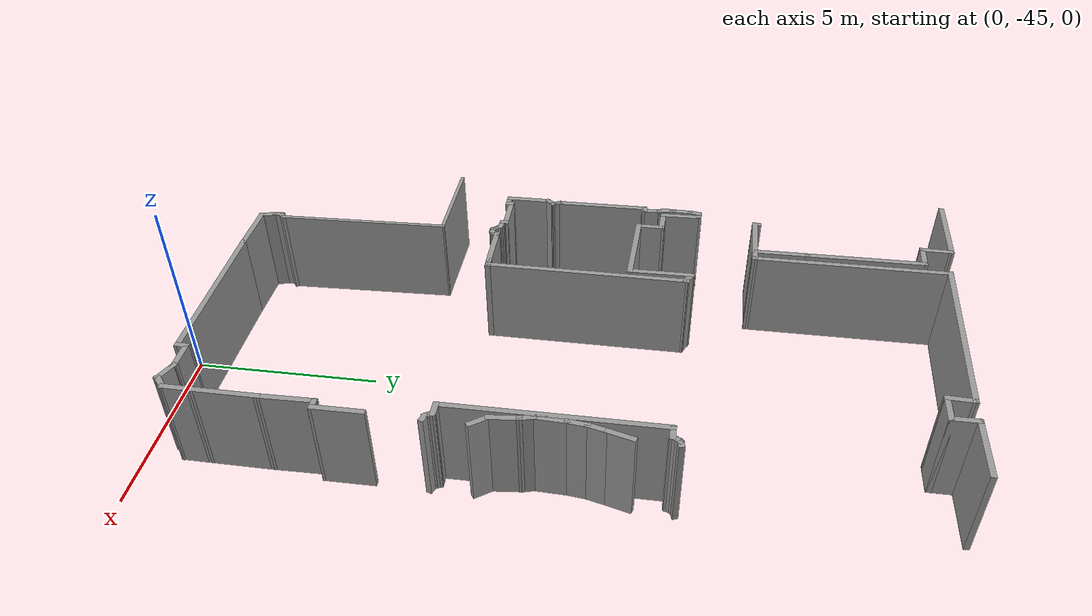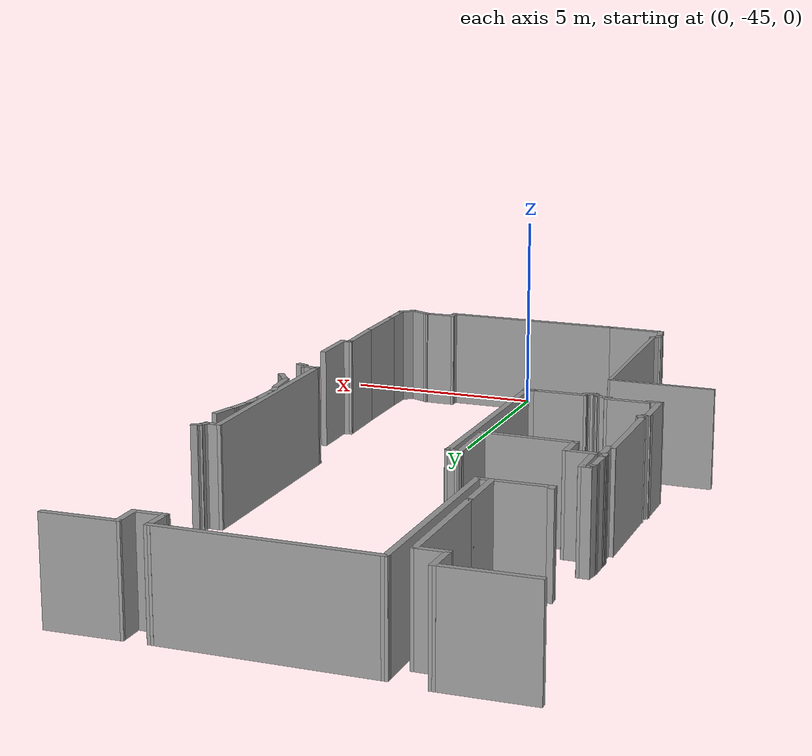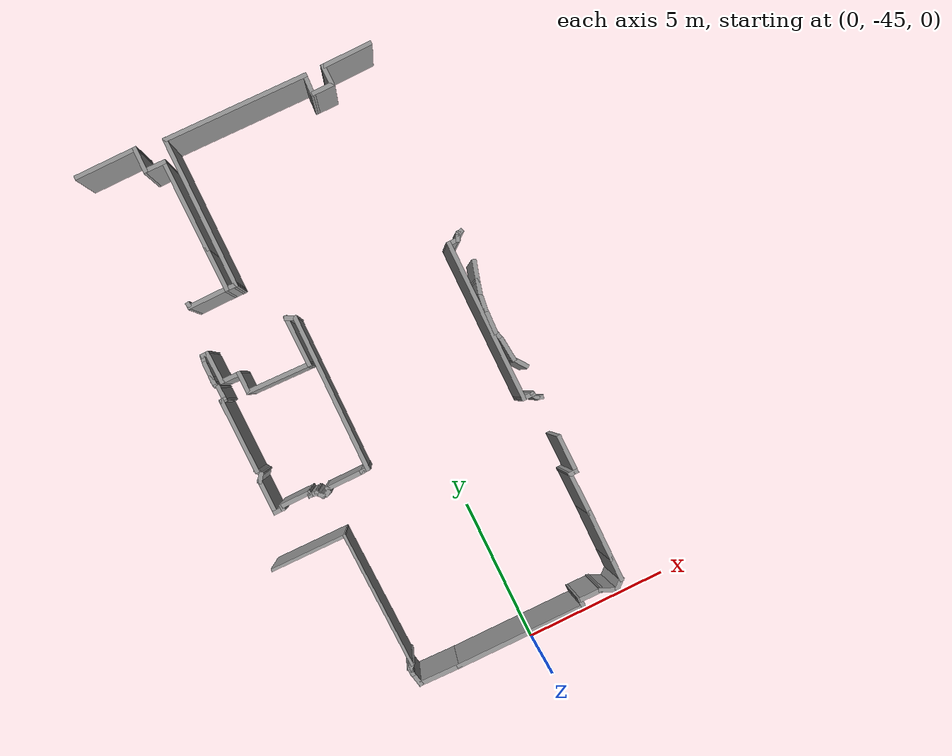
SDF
<sdf version="1.6">
 <model name="3_north">
  <pose>-14.229 -33.4428 0 0 -0 0</pose>
  <link name="Wall_160">
   <collision name="Wall_160_Collision">
    <geometry><box><size>1.37004 0.15 2.5</size></box></geometry>
    <pose>0 0 1.25 0 -0 0</pose>
   </collision>
   <visual name="Wall_160_Visual">
    <pose>0 0 1.25 0 -0 0</pose>
    <geometry><box><size>1.37004 0.15 2.5</size></box></geometry>
    <material>
     <script><uri>file://media/materials/scripts/gazebo.material</uri><name>Gazebo/Grey</name></script>
     <ambient>1 1 1 1</ambient>
    </material>
   </visual>
   <pose>17.8249 -6.19533 0 0 0 -1.5708</pose>
  </link>
  <link name="Wall_162">
   <collision name="Wall_162_Collision">
    <geometry><box><size>0.356643 0.15 2.5</size></box></geometry>
    <pose>0 0 1.25 0 -0 0</pose>
   </collision>
   <visual name="Wall_162_Visual">
    <pose>0 0 1.25 0 -0 0</pose>
    <geometry><box><size>0.356643 0.15 2.5</size></box></geometry>
    <material>
     <script><uri>file://media/materials/scripts/gazebo.material</uri><name>Gazebo/Grey</name></script>
     <ambient>1 1 1 1</ambient>
    </material>
   </visual>
   <pose>17.7216 -6.80767 0 0 0 -3.11889</pose>
  </link>
  <link name="Wall_163">
   <collision name="Wall_163_Collision">
    <geometry><box><size>1.5375 0.15 2.5</size></box></geometry>
    <pose>0 0 1.25 0 -0 0</pose>
   </collision>
   <visual name="Wall_163_Visual">
    <pose>0 0 1.25 0 -0 0</pose>
    <geometry><box><size>1.5375 0.15 2.5</size></box></geometry>
    <material>
     <script><uri>file://media/materials/scripts/gazebo.material</uri><name>Gazebo/Grey</name></script>
     <ambient>1 1 1 1</ambient>
    </material>
   </visual>
   <pose>17.6282 -7.5037 0 0 0 -1.55658</pose>
  </link>
  <link name="Wall_165">
   <collision name="Wall_165_Collision">
    <geometry><box><size>1.79463 0.15 2.5</size></box></geometry>
    <pose>0 0 1.25 0 -0 0</pose>
   </collision>
   <visual name="Wall_165_Visual">
    <pose>0 0 1.25 0 -0 0</pose>
    <geometry><box><size>1.79463 0.15 2.5</size></box></geometry>
    <material>
     <script><uri>file://media/materials/scripts/gazebo.material</uri><name>Gazebo/Grey</name></script>
     <ambient>1 1 1 1</ambient>
    </material>
   </visual>
   <pose>17.6312 -9.01966 0 0 0 -1.57907</pose>
  </link>
  <link name="Wall_166">
   <collision name="Wall_166_Collision">
    <geometry><box><size>0.870069 0.15 2.5</size></box></geometry>
    <pose>0 0 1.25 0 -0 0</pose>
   </collision>
   <visual name="Wall_166_Visual">
    <pose>0 0 1.25 0 -0 0</pose>
    <geometry><box><size>0.870069 0.15 2.5</size></box></geometry>
    <material>
     <script><uri>file://media/materials/scripts/gazebo.material</uri><name>Gazebo/Grey</name></script>
     <ambient>1 1 1 1</ambient>
    </material>
   </visual>
   <pose>17.6194 -10.202 0 0 0 -1.58468</pose>
  </link>
  <link name="Wall_167">
   <collision name="Wall_167_Collision">
    <geometry><box><size>0.518782 0.15 2.5</size></box></geometry>
    <pose>0 0 1.25 0 -0 0</pose>
   </collision>
   <visual name="Wall_167_Visual">
    <pose>0 0 1.25 0 -0 0</pose>
    <geometry><box><size>0.518782 0.15 2.5</size></box></geometry>
    <material>
     <script><uri>file://media/materials/scripts/gazebo.material</uri><name>Gazebo/Grey</name></script>
     <ambient>1 1 1 1</ambient>
    </material>
   </visual>
   <pose>17.4744 -10.682 0 0 0 -2.43297</pose>
  </link>
  <link name="Wall_168">
   <collision name="Wall_168_Collision">
    <geometry><box><size>0.664782 0.15 2.5</size></box></geometry>
    <pose>0 0 1.25 0 -0 0</pose>
   </collision>
   <visual name="Wall_168_Visual">
    <pose>0 0 1.25 0 -0 0</pose>
    <geometry><box><size>0.664782 0.15 2.5</size></box></geometry>
    <material>
     <script><uri>file://media/materials/scripts/gazebo.material</uri><name>Gazebo/Grey</name></script>
     <ambient>1 1 1 1</ambient>
    </material>
   </visual>
   <pose>17.0994 -10.6969 0 0 -0 2.7214</pose>
  </link>
  <link name="Wall_169">
   <collision name="Wall_169_Collision">
    <geometry><box><size>0.880068 0.15 2.5</size></box></geometry>
    <pose>0 0 1.25 0 -0 0</pose>
   </collision>
   <visual name="Wall_169_Visual">
    <pose>0 0 1.25 0 -0 0</pose>
    <geometry><box><size>0.880068 0.15 2.5</size></box></geometry>
    <material>
     <script><uri>file://media/materials/scripts/gazebo.material</uri><name>Gazebo/Grey</name></script>
     <ambient>1 1 1 1</ambient>
    </material>
   </visual>
   <pose>16.4994 -10.5869 0 0 -0 3.1279</pose>
  </link>
  <link name="Wall_170">
   <collision name="Wall_170_Collision">
    <geometry><box><size>0.380217 0.15 2.5</size></box></geometry>
    <pose>0 0 1.25 0 -0 0</pose>
   </collision>
   <visual name="Wall_170_Visual">
    <pose>0 0 1.25 0 -0 0</pose>
    <geometry><box><size>0.380217 0.15 2.5</size></box></geometry>
    <material>
     <script><uri>file://media/materials/scripts/gazebo.material</uri><name>Gazebo/Grey</name></script>
     <ambient>1 1 1 1</ambient>
    </material>
   </visual>
   <pose>16.1294 -10.6969 0 0 0 -1.61425</pose>
  </link>
  <link name="Wall_171">
   <collision name="Wall_171_Collision">
    <geometry><box><size>4.5901 0.15 2.5</size></box></geometry>
    <pose>0 0 1.25 0 -0 0</pose>
   </collision>
   <visual name="Wall_171_Visual">
    <pose>0 0 1.25 0 -0 0</pose>
    <geometry><box><size>4.5901 0.15 2.5</size></box></geometry>
    <material>
     <script><uri>file://media/materials/scripts/gazebo.material</uri><name>Gazebo/Grey</name></script>
     <ambient>1 1 1 1</ambient>
    </material>
   </visual>
   <pose>13.9044 -10.797 0 0 -0 3.13484</pose>
  </link>
  <link name="Wall_173">
   <collision name="Wall_173_Collision">
    <geometry><box><size>1.52058 0.15 2.5</size></box></geometry>
    <pose>0 0 1.25 0 -0 0</pose>
   </collision>
   <visual name="Wall_173_Visual">
    <pose>0 0 1.25 0 -0 0</pose>
    <geometry><box><size>1.52058 0.15 2.5</size></box></geometry>
    <material>
     <script><uri>file://media/materials/scripts/gazebo.material</uri><name>Gazebo/Grey</name></script>
     <ambient>1 1 1 1</ambient>
    </material>
   </visual>
   <pose>10.9994 -10.762 0 0 -0 3.1124</pose>
  </link>
  <link name="Wall_174">
   <collision name="Wall_174_Collision">
    <geometry><box><size>0.55025 0.15 2.5</size></box></geometry>
    <pose>0 0 1.25 0 -0 0</pose>
   </collision>
   <visual name="Wall_174_Visual">
    <pose>0 0 1.25 0 -0 0</pose>
    <geometry><box><size>0.55025 0.15 2.5</size></box></geometry>
    <material>
     <script><uri>file://media/materials/scripts/gazebo.material</uri><name>Gazebo/Grey</name></script>
     <ambient>1 1 1 1</ambient>
    </material>
   </visual>
   <pose>10.2694 -10.547 0 0 -0 1.7976</pose>
  </link>
  <link name="Wall_175">
   <collision name="Wall_175_Collision">
    <geometry><box><size>0.330278 0.15 2.5</size></box></geometry>
    <pose>0 0 1.25 0 -0 0</pose>
   </collision>
   <visual name="Wall_175_Visual">
    <pose>0 0 1.25 0 -0 0</pose>
    <geometry><box><size>0.330278 0.15 2.5</size></box></geometry>
    <material>
     <script><uri>file://media/materials/scripts/gazebo.material</uri><name>Gazebo/Grey</name></script>
     <ambient>1 1 1 1</ambient>
    </material>
   </visual>
   <pose>10.2194 -10.262 0 0 -0 1.6263</pose>
  </link>
  <link name="Wall_176">
   <collision name="Wall_176_Collision">
    <geometry><box><size>0.30589 0.15 2.5</size></box></geometry>
    <pose>0 0 1.25 0 -0 0</pose>
   </collision>
   <visual name="Wall_176_Visual">
    <pose>0 0 1.25 0 -0 0</pose>
    <geometry><box><size>0.30589 0.15 2.5</size></box></geometry>
    <material>
     <script><uri>file://media/materials/scripts/gazebo.material</uri><name>Gazebo/Grey</name></script>
     <ambient>1 1 1 1</ambient>
    </material>
   </visual>
   <pose>10.2742 -10.122 0 0 -0 0.696084</pose>
  </link>
  <link name="Wall_177">
   <collision name="Wall_177_Collision">
    <geometry><box><size>4.77244 0.1 2.5</size></box></geometry>
    <pose>0 0 1.25 0 -0 0</pose>
   </collision>
   <visual name="Wall_177_Visual">
    <pose>0 0 1.25 0 -0 0</pose>
    <geometry><box><size>4.77244 0.1 2.5</size></box></geometry>
    <material>
     <script><uri>file://media/materials/scripts/gazebo.material</uri><name>Gazebo/Grey</name></script>
     <ambient>1 1 1 1</ambient>
    </material>
   </visual>
   <pose>10.259 -7.73699 0 0 -0 1.60291</pose>
  </link>
  <link name="Wall_180">
   <collision name="Wall_180_Collision">
    <geometry><box><size>2.6598 0.1 2.5</size></box></geometry>
    <pose>0 0 1.25 0 -0 0</pose>
   </collision>
   <visual name="Wall_180_Visual">
    <pose>0 0 1.25 0 -0 0</pose>
    <geometry><box><size>2.6598 0.1 2.5</size></box></geometry>
    <material>
     <script><uri>file://media/materials/scripts/gazebo.material</uri><name>Gazebo/Grey</name></script>
     <ambient>1 1 1 1</ambient>
    </material>
   </visual>
   <pose>8.90404 -5.38699 0 0 -0 3.12987</pose>
  </link>
  <link name="Wall_393">
   <collision name="Wall_393_Collision">
    <geometry><box><size>5.71619 0.15 2.5</size></box></geometry>
    <pose>0 0 1.25 0 -0 0</pose>
   </collision>
   <visual name="Wall_393_Visual">
    <pose>0 0 1.25 0 -0 0</pose>
    <geometry><box><size>5.71619 0.15 2.5</size></box></geometry>
    <material>
     <script><uri>file://media/materials/scripts/gazebo.material</uri><name>Gazebo/Grey</name></script>
     <ambient>1 1 1 1</ambient>
    </material>
   </visual>
   <pose>17.3571 -1.16356 0 0 -0 1.56666</pose>
  </link>
  <link name="Wall_394">
   <collision name="Wall_394_Collision">
    <geometry><box><size>0.4605 0.15 2.5</size></box></geometry>
    <pose>0 0 1.25 0 -0 0</pose>
   </collision>
   <visual name="Wall_394_Visual">
    <pose>0 0 1.25 0 -0 0</pose>
    <geometry><box><size>0.4605 0.15 2.5</size></box></geometry>
    <material>
     <script><uri>file://media/materials/scripts/gazebo.material</uri><name>Gazebo/Grey</name></script>
     <ambient>1 1 1 1</ambient>
    </material>
   </visual>
   <pose>17.5239 1.61943 0 0 -0 0</pose>
  </link>
  <link name="Wall_395">
   <collision name="Wall_395_Collision">
    <geometry><box><size>0.252859 0.15 2.5</size></box></geometry>
    <pose>0 0 1.25 0 -0 0</pose>
   </collision>
   <visual name="Wall_395_Visual">
    <pose>0 0 1.25 0 -0 0</pose>
    <geometry><box><size>0.252859 0.15 2.5</size></box></geometry>
    <material>
     <script><uri>file://media/materials/scripts/gazebo.material</uri><name>Gazebo/Grey</name></script>
     <ambient>1 1 1 1</ambient>
    </material>
   </visual>
   <pose>17.7021 1.66543 0 0 -0 1.10715</pose>
  </link>
  <link name="Wall_396">
   <collision name="Wall_396_Collision">
    <geometry><box><size>0.248927 0.15 2.5</size></box></geometry>
    <pose>0 0 1.25 0 -0 0</pose>
   </collision>
   <visual name="Wall_396_Visual">
    <pose>0 0 1.25 0 -0 0</pose>
    <geometry><box><size>0.248927 0.15 2.5</size></box></geometry>
    <material>
     <script><uri>file://media/materials/scripts/gazebo.material</uri><name>Gazebo/Grey</name></script>
     <ambient>1 1 1 1</ambient>
    </material>
   </visual>
   <pose>17.7539 1.75168 0 0 -0 0.950547</pose>
  </link>
  <link name="Wall_397">
   <collision name="Wall_397_Collision">
    <geometry><box><size>0.270064 0.15 2.5</size></box></geometry>
    <pose>0 0 1.25 0 -0 0</pose>
   </collision>
   <visual name="Wall_397_Visual">
    <pose>0 0 1.25 0 -0 0</pose>
    <geometry><box><size>0.270064 0.15 2.5</size></box></geometry>
    <material>
     <script><uri>file://media/materials/scripts/gazebo.material</uri><name>Gazebo/Grey</name></script>
     <ambient>1 1 1 1</ambient>
    </material>
   </visual>
   <pose>17.8401 1.80919 0 0 -0 0.291457</pose>
  </link>
  <link name="Wall_407">
   <collision name="Wall_407_Collision">
    <geometry><box><size>0.772383 0.15 2.5</size></box></geometry>
    <pose>0 0 1.25 0 -0 0</pose>
   </collision>
   <visual name="Wall_407_Visual">
    <pose>0 0 1.25 0 -0 0</pose>
    <geometry><box><size>0.772383 0.15 2.5</size></box></geometry>
    <material>
     <script><uri>file://media/materials/scripts/gazebo.material</uri><name>Gazebo/Grey</name></script>
     <ambient>1 1 1 1</ambient>
    </material>
   </visual>
   <pose>17.7654 0.446435 0 0 0 -1.85163</pose>
  </link>
  <link name="Wall_408">
   <collision name="Wall_408_Collision">
    <geometry><box><size>0.649291 0.15 2.5</size></box></geometry>
    <pose>0 0 1.25 0 -0 0</pose>
   </collision>
   <visual name="Wall_408_Visual">
    <pose>0 0 1.25 0 -0 0</pose>
    <geometry><box><size>0.649291 0.15 2.5</size></box></geometry>
    <material>
     <script><uri>file://media/materials/scripts/gazebo.material</uri><name>Gazebo/Grey</name></script>
     <ambient>1 1 1 1</ambient>
    </material>
   </visual>
   <pose>17.6159 -0.094065 0 0 0 -1.82695</pose>
  </link>
  <link name="Wall_409">
   <collision name="Wall_409_Collision">
    <geometry><box><size>0.636411 0.15 2.5</size></box></geometry>
    <pose>0 0 1.25 0 -0 0</pose>
   </collision>
   <visual name="Wall_409_Visual">
    <pose>0 0 1.25 0 -0 0</pose>
    <geometry><box><size>0.636411 0.15 2.5</size></box></geometry>
    <material>
     <script><uri>file://media/materials/scripts/gazebo.material</uri><name>Gazebo/Grey</name></script>
     <ambient>1 1 1 1</ambient>
    </material>
   </visual>
   <pose>17.5239 -0.577065 0 0 0 -1.68929</pose>
  </link>
  <link name="Wall_410">
   <collision name="Wall_410_Collision">
    <geometry><box><size>0.94425 0.15 2.5</size></box></geometry>
    <pose>0 0 1.25 0 -0 0</pose>
   </collision>
   <visual name="Wall_410_Visual">
    <pose>0 0 1.25 0 -0 0</pose>
    <geometry><box><size>0.94425 0.15 2.5</size></box></geometry>
    <material>
     <script><uri>file://media/materials/scripts/gazebo.material</uri><name>Gazebo/Grey</name></script>
     <ambient>1 1 1 1</ambient>
    </material>
   </visual>
   <pose>17.4779 -1.21531 0 0 0 -1.61425</pose>
  </link>
  <link name="Wall_411">
   <collision name="Wall_411_Collision">
    <geometry><box><size>0.48191 0.15 2.5</size></box></geometry>
    <pose>0 0 1.25 0 -0 0</pose>
   </collision>
   <visual name="Wall_411_Visual">
    <pose>0 0 1.25 0 -0 0</pose>
    <geometry><box><size>0.48191 0.15 2.5</size></box></geometry>
    <material>
     <script><uri>file://media/materials/scripts/gazebo.material</uri><name>Gazebo/Grey</name></script>
     <ambient>1 1 1 1</ambient>
    </material>
   </visual>
   <pose>17.5009 -1.77306 0 0 0 -1.32582</pose>
  </link>
  <link name="Wall_412">
   <collision name="Wall_412_Collision">
    <geometry><box><size>0.877778 0.15 2.5</size></box></geometry>
    <pose>0 0 1.25 0 -0 0</pose>
   </collision>
   <visual name="Wall_412_Visual">
    <pose>0 0 1.25 0 -0 0</pose>
    <geometry><box><size>0.877778 0.15 2.5</size></box></geometry>
    <material>
     <script><uri>file://media/materials/scripts/gazebo.material</uri><name>Gazebo/Grey</name></script>
     <ambient>1 1 1 1</ambient>
    </material>
   </visual>
   <pose>17.5756 -2.29631 0 0 0 -1.47585</pose>
  </link>
  <link name="Wall_413">
   <collision name="Wall_413_Collision">
    <geometry><box><size>0.619251 0.15 2.5</size></box></geometry>
    <pose>0 0 1.25 0 -0 0</pose>
   </collision>
   <visual name="Wall_413_Visual">
    <pose>0 0 1.25 0 -0 0</pose>
    <geometry><box><size>0.619251 0.15 2.5</size></box></geometry>
    <material>
     <script><uri>file://media/materials/scripts/gazebo.material</uri><name>Gazebo/Grey</name></script>
     <ambient>1 1 1 1</ambient>
    </material>
   </visual>
   <pose>17.7481 -2.84831 0 0 0 -0.942</pose>
  </link>
  <link name="Wall_419">
   <collision name="Wall_419_Collision">
    <geometry><box><size>0.472 0.15 2.5</size></box></geometry>
    <pose>0 0 1.25 0 -0 0</pose>
   </collision>
   <visual name="Wall_419_Visual">
    <pose>0 0 1.25 0 -0 0</pose>
    <geometry><box><size>0.472 0.15 2.5</size></box></geometry>
    <material>
     <script><uri>file://media/materials/scripts/gazebo.material</uri><name>Gazebo/Grey</name></script>
     <ambient>1 1 1 1</ambient>
    </material>
   </visual>
   <pose>17.5066 -3.94657 0 0 -0 0</pose>
  </link>
  <link name="Wall_420">
   <collision name="Wall_420_Collision">
    <geometry><box><size>0.248256 0.15 2.5</size></box></geometry>
    <pose>0 0 1.25 0 -0 0</pose>
   </collision>
   <visual name="Wall_420_Visual">
    <pose>0 0 1.25 0 -0 0</pose>
    <geometry><box><size>0.248256 0.15 2.5</size></box></geometry>
    <material>
     <script><uri>file://media/materials/scripts/gazebo.material</uri><name>Gazebo/Grey</name></script>
     <ambient>1 1 1 1</ambient>
    </material>
   </visual>
   <pose>17.6849 -3.99256 0 0 0 -1.21203</pose>
  </link>
  <link name="Wall_421">
   <collision name="Wall_421_Collision">
    <geometry><box><size>0.232928 0.15 2.5</size></box></geometry>
    <pose>0 0 1.25 0 -0 0</pose>
   </collision>
   <visual name="Wall_421_Visual">
    <pose>0 0 1.25 0 -0 0</pose>
    <geometry><box><size>0.232928 0.15 2.5</size></box></geometry>
    <material>
     <script><uri>file://media/materials/scripts/gazebo.material</uri><name>Gazebo/Grey</name></script>
     <ambient>1 1 1 1</ambient>
    </material>
   </visual>
   <pose>17.7251 -4.07306 0 0 0 -0.982794</pose>
  </link>
  <link name="Wall_422">
   <collision name="Wall_422_Collision">
    <geometry><box><size>0.284604 0.15 2.5</size></box></geometry>
    <pose>0 0 1.25 0 -0 0</pose>
   </collision>
   <visual name="Wall_422_Visual">
    <pose>0 0 1.25 0 -0 0</pose>
    <geometry><box><size>0.284604 0.15 2.5</size></box></geometry>
    <material>
     <script><uri>file://media/materials/scripts/gazebo.material</uri><name>Gazebo/Grey</name></script>
     <ambient>1 1 1 1</ambient>
    </material>
   </visual>
   <pose>17.8114 -4.13056 0 0 0 -0.348771</pose>
  </link>
  <link name="Wall_427">
   <collision name="Wall_427_Collision">
    <geometry><box><size>1.82303 0.15 2.5</size></box></geometry>
    <pose>0 0 1.25 0 -0 0</pose>
   </collision>
   <visual name="Wall_427_Visual">
    <pose>0 0 1.25 0 -0 0</pose>
    <geometry><box><size>1.82303 0.15 2.5</size></box></geometry>
    <material>
     <script><uri>file://media/materials/scripts/gazebo.material</uri><name>Gazebo/Grey</name></script>
     <ambient>1 1 1 1</ambient>
    </material>
   </visual>
   <pose>11.5634 0.930467 0 0 0 -1.56171</pose>
  </link>
  <link name="Wall_428">
   <collision name="Wall_428_Collision">
    <geometry><box><size>2.30986 0.15 2.5</size></box></geometry>
    <pose>0 0 1.25 0 -0 0</pose>
   </collision>
   <visual name="Wall_428_Visual">
    <pose>0 0 1.25 0 -0 0</pose>
    <geometry><box><size>2.30986 0.15 2.5</size></box></geometry>
    <material>
     <script><uri>file://media/materials/scripts/gazebo.material</uri><name>Gazebo/Grey</name></script>
     <ambient>1 1 1 1</ambient>
    </material>
   </visual>
   <pose>10.4912 0.124403 0 0 -0 3.11343</pose>
  </link>
  <link name="Wall_429">
   <collision name="Wall_429_Collision">
    <geometry><box><size>0.803976 0.15 2.5</size></box></geometry>
    <pose>0 0 1.25 0 -0 0</pose>
   </collision>
   <visual name="Wall_429_Visual">
    <pose>0 0 1.25 0 -0 0</pose>
    <geometry><box><size>0.803976 0.15 2.5</size></box></geometry>
    <material>
     <script><uri>file://media/materials/scripts/gazebo.material</uri><name>Gazebo/Grey</name></script>
     <ambient>1 1 1 1</ambient>
    </material>
   </visual>
   <pose>9.41134 0.481809 0 0 -0 1.5708</pose>
  </link>
  <link name="Wall_430">
   <collision name="Wall_430_Collision">
    <geometry><box><size>0.773744 0.15 2.5</size></box></geometry>
    <pose>0 0 1.25 0 -0 0</pose>
   </collision>
   <visual name="Wall_430_Visual">
    <pose>0 0 1.25 0 -0 0</pose>
    <geometry><box><size>0.773744 0.15 2.5</size></box></geometry>
    <material>
     <script><uri>file://media/materials/scripts/gazebo.material</uri><name>Gazebo/Grey</name></script>
     <ambient>1 1 1 1</ambient>
    </material>
   </visual>
   <pose>9.09957 0.816402 0 0 -0 3.11721</pose>
  </link>
  <link name="Wall_431">
   <collision name="Wall_431_Collision">
    <geometry><box><size>1.16944 0.15 2.5</size></box></geometry>
    <pose>0 0 1.25 0 -0 0</pose>
   </collision>
   <visual name="Wall_431_Visual">
    <pose>0 0 1.25 0 -0 0</pose>
    <geometry><box><size>1.16944 0.15 2.5</size></box></geometry>
    <material>
     <script><uri>file://media/materials/scripts/gazebo.material</uri><name>Gazebo/Grey</name></script>
     <ambient>1 1 1 1</ambient>
    </material>
   </visual>
   <pose>8.77258 1.3335 0 0 -0 1.60064</pose>
  </link>
  <link name="Wall_432">
   <collision name="Wall_432_Collision">
    <geometry><box><size>0.314051 0.15 2.5</size></box></geometry>
    <pose>0 0 1.25 0 -0 0</pose>
   </collision>
   <visual name="Wall_432_Visual">
    <pose>0 0 1.25 0 -0 0</pose>
    <geometry><box><size>0.314051 0.15 2.5</size></box></geometry>
    <material>
     <script><uri>file://media/materials/scripts/gazebo.material</uri><name>Gazebo/Grey</name></script>
     <ambient>1 1 1 1</ambient>
    </material>
   </visual>
   <pose>8.67534 1.84336 0 0 -0 3.13711</pose>
  </link>
  <link name="Wall_434">
   <collision name="Wall_434_Collision">
    <geometry><box><size>0.401013 0.15 2.5</size></box></geometry>
    <pose>0 0 1.25 0 -0 0</pose>
   </collision>
   <visual name="Wall_434_Visual">
    <pose>0 0 1.25 0 -0 0</pose>
    <geometry><box><size>0.401013 0.15 2.5</size></box></geometry>
    <material>
     <script><uri>file://media/materials/scripts/gazebo.material</uri><name>Gazebo/Grey</name></script>
     <ambient>1 1 1 1</ambient>
    </material>
   </visual>
   <pose>8.561 1.70949 0 0 0 -1.70989</pose>
  </link>
  <link name="Wall_435">
   <collision name="Wall_435_Collision">
    <geometry><box><size>0.64223 0.15 2.5</size></box></geometry>
    <pose>0 0 1.25 0 -0 0</pose>
   </collision>
   <visual name="Wall_435_Visual">
    <pose>0 0 1.25 0 -0 0</pose>
    <geometry><box><size>0.64223 0.15 2.5</size></box></geometry>
    <material>
     <script><uri>file://media/materials/scripts/gazebo.material</uri><name>Gazebo/Grey</name></script>
     <ambient>1 1 1 1</ambient>
    </material>
   </visual>
   <pose>8.54111 1.33909 0 0 0 -1.5809</pose>
  </link>
  <link name="Wall_436">
   <collision name="Wall_436_Collision">
    <geometry><box><size>0.333955 0.15 2.5</size></box></geometry>
    <pose>0 0 1.25 0 -0 0</pose>
   </collision>
   <visual name="Wall_436_Visual">
    <pose>0 0 1.25 0 -0 0</pose>
    <geometry><box><size>0.333955 0.15 2.5</size></box></geometry>
    <material>
     <script><uri>file://media/materials/scripts/gazebo.material</uri><name>Gazebo/Grey</name></script>
     <ambient>1 1 1 1</ambient>
    </material>
   </visual>
   <pose>8.53863 1.00101 0 0 0 -1.5708</pose>
  </link>
  <link name="Wall_437">
   <collision name="Wall_437_Collision">
    <geometry><box><size>0.250548 0.15 2.5</size></box></geometry>
    <pose>0 0 1.25 0 -0 0</pose>
   </collision>
   <visual name="Wall_437_Visual">
    <pose>0 0 1.25 0 -0 0</pose>
    <geometry><box><size>0.250548 0.15 2.5</size></box></geometry>
    <material>
     <script><uri>file://media/materials/scripts/gazebo.material</uri><name>Gazebo/Grey</name></script>
     <ambient>1 1 1 1</ambient>
    </material>
   </visual>
   <pose>8.54609 0.859318 0 0 0 -1.42191</pose>
  </link>
  <link name="Wall_438">
   <collision name="Wall_438_Collision">
    <geometry><box><size>0.267863 0.15 2.5</size></box></geometry>
    <pose>0 0 1.25 0 -0 0</pose>
   </collision>
   <visual name="Wall_438_Visual">
    <pose>0 0 1.25 0 -0 0</pose>
    <geometry><box><size>0.267863 0.15 2.5</size></box></geometry>
    <material>
     <script><uri>file://media/materials/scripts/gazebo.material</uri><name>Gazebo/Grey</name></script>
     <ambient>1 1 1 1</ambient>
    </material>
   </visual>
   <pose>8.58089 0.757397 0 0 0 -1.08828</pose>
  </link>
  <link name="Wall_439">
   <collision name="Wall_439_Collision">
    <geometry><box><size>0.607511 0.15 2.5</size></box></geometry>
    <pose>0 0 1.25 0 -0 0</pose>
   </collision>
   <visual name="Wall_439_Visual">
    <pose>0 0 1.25 0 -0 0</pose>
    <geometry><box><size>0.607511 0.15 2.5</size></box></geometry>
    <material>
     <script><uri>file://media/materials/scripts/gazebo.material</uri><name>Gazebo/Grey</name></script>
     <ambient>1 1 1 1</ambient>
    </material>
   </visual>
   <pose>8.61321 0.476492 0 0 0 -1.54906</pose>
  </link>
  <link name="Wall_440">
   <collision name="Wall_440_Collision">
    <geometry><box><size>0.244594 0.15 2.5</size></box></geometry>
    <pose>0 0 1.25 0 -0 0</pose>
   </collision>
   <visual name="Wall_440_Visual">
    <pose>0 0 1.25 0 -0 0</pose>
    <geometry><box><size>0.244594 0.15 2.5</size></box></geometry>
    <material>
     <script><uri>file://media/materials/scripts/gazebo.material</uri><name>Gazebo/Grey</name></script>
     <ambient>1 1 1 1</ambient>
    </material>
   </visual>
   <pose>8.57095 0.25853 0 0 0 -3.08901</pose>
  </link>
  <link name="Wall_443">
   <collision name="Wall_443_Collision">
    <geometry><box><size>2.66824 0.15 2.5</size></box></geometry>
    <pose>0 0 1.25 0 -0 0</pose>
   </collision>
   <visual name="Wall_443_Visual">
    <pose>0 0 1.25 0 -0 0</pose>
    <geometry><box><size>2.66824 0.15 2.5</size></box></geometry>
    <material>
     <script><uri>file://media/materials/scripts/gazebo.material</uri><name>Gazebo/Grey</name></script>
     <ambient>1 1 1 1</ambient>
    </material>
   </visual>
   <pose>8.52799 -1.00828 0 0 0 -1.55578</pose>
  </link>
  <link name="Wall_444">
   <collision name="Wall_444_Collision">
    <geometry><box><size>0.329255 0.15 2.5</size></box></geometry>
    <pose>0 0 1.25 0 -0 0</pose>
   </collision>
   <visual name="Wall_444_Visual">
    <pose>0 0 1.25 0 -0 0</pose>
    <geometry><box><size>0.329255 0.15 2.5</size></box></geometry>
    <material>
     <script><uri>file://media/materials/scripts/gazebo.material</uri><name>Gazebo/Grey</name></script>
     <ambient>1 1 1 1</ambient>
    </material>
   </visual>
   <pose>8.58849 -2.34666 0 0 0 -1.08828</pose>
  </link>
  <link name="Wall_445">
   <collision name="Wall_445_Collision">
    <geometry><box><size>0.382936 0.15 2.5</size></box></geometry>
    <pose>0 0 1.25 0 -0 0</pose>
   </collision>
   <visual name="Wall_445_Visual">
    <pose>0 0 1.25 0 -0 0</pose>
    <geometry><box><size>0.382936 0.15 2.5</size></box></geometry>
    <material>
     <script><uri>file://media/materials/scripts/gazebo.material</uri><name>Gazebo/Grey</name></script>
     <ambient>1 1 1 1</ambient>
    </material>
   </visual>
   <pose>8.56202 -2.52057 0 0 0 -2.19482</pose>
  </link>
  <link name="Wall_446">
   <collision name="Wall_446_Collision">
    <geometry><box><size>1.27676 0.15 2.5</size></box></geometry>
    <pose>0 0 1.25 0 -0 0</pose>
   </collision>
   <visual name="Wall_446_Visual">
    <pose>0 0 1.25 0 -0 0</pose>
    <geometry><box><size>1.27676 0.15 2.5</size></box></geometry>
    <material>
     <script><uri>file://media/materials/scripts/gazebo.material</uri><name>Gazebo/Grey</name></script>
     <ambient>1 1 1 1</ambient>
    </material>
   </visual>
   <pose>8.50153 -3.17842 0 0 0 -1.55737</pose>
  </link>
  <link name="Wall_447">
   <collision name="Wall_447_Collision">
    <geometry><box><size>0.422212 0.15 2.5</size></box></geometry>
    <pose>0 0 1.25 0 -0 0</pose>
   </collision>
   <visual name="Wall_447_Visual">
    <pose>0 0 1.25 0 -0 0</pose>
    <geometry><box><size>0.422212 0.15 2.5</size></box></geometry>
    <material>
     <script><uri>file://media/materials/scripts/gazebo.material</uri><name>Gazebo/Grey</name></script>
     <ambient>1 1 1 1</ambient>
    </material>
   </visual>
   <pose>8.64519 -3.74174 0 0 -0 0</pose>
  </link>
  <link name="Wall_448">
   <collision name="Wall_448_Collision">
    <geometry><box><size>0.240737 0.15 2.5</size></box></geometry>
    <pose>0 0 1.25 0 -0 0</pose>
   </collision>
   <visual name="Wall_448_Visual">
    <pose>0 0 1.25 0 -0 0</pose>
    <geometry><box><size>0.240737 0.15 2.5</size></box></geometry>
    <material>
     <script><uri>file://media/materials/scripts/gazebo.material</uri><name>Gazebo/Grey</name></script>
     <ambient>1 1 1 1</ambient>
    </material>
   </visual>
   <pose>8.7813 -3.69638 0 0 -0 1.5708</pose>
  </link>
  <link name="Wall_449">
   <collision name="Wall_449_Collision">
    <geometry><box><size>1.11813 0.15 2.5</size></box></geometry>
    <pose>0 0 1.25 0 -0 0</pose>
   </collision>
   <visual name="Wall_449_Visual">
    <pose>0 0 1.25 0 -0 0</pose>
    <geometry><box><size>1.11813 0.15 2.5</size></box></geometry>
    <material>
     <script><uri>file://media/materials/scripts/gazebo.material</uri><name>Gazebo/Grey</name></script>
     <ambient>1 1 1 1</ambient>
    </material>
   </visual>
   <pose>9.26523 -3.65101 0 0 -0 0</pose>
  </link>
  <link name="Wall_450">
   <collision name="Wall_450_Collision">
    <geometry><box><size>0.241052 0.15 2.5</size></box></geometry>
    <pose>0 0 1.25 0 -0 0</pose>
   </collision>
   <visual name="Wall_450_Visual">
    <pose>0 0 1.25 0 -0 0</pose>
    <geometry><box><size>0.241052 0.15 2.5</size></box></geometry>
    <material>
     <script><uri>file://media/materials/scripts/gazebo.material</uri><name>Gazebo/Grey</name></script>
     <ambient>1 1 1 1</ambient>
    </material>
   </visual>
   <pose>9.75295 -3.69638 0 0 0 -1.48765</pose>
  </link>
  <link name="Wall_451">
   <collision name="Wall_451_Collision">
    <geometry><box><size>0.377974 0.15 2.5</size></box></geometry>
    <pose>0 0 1.25 0 -0 0</pose>
   </collision>
   <visual name="Wall_451_Visual">
    <pose>0 0 1.25 0 -0 0</pose>
    <geometry><box><size>0.377974 0.15 2.5</size></box></geometry>
    <material>
     <script><uri>file://media/materials/scripts/gazebo.material</uri><name>Gazebo/Grey</name></script>
     <ambient>1 1 1 1</ambient>
    </material>
   </visual>
   <pose>9.87015 -3.75309 0 0 0 -0.099669</pose>
  </link>
  <link name="Wall_452">
   <collision name="Wall_452_Collision">
    <geometry><box><size>0.278767 0.15 2.5</size></box></geometry>
    <pose>0 0 1.25 0 -0 0</pose>
   </collision>
   <visual name="Wall_452_Visual">
    <pose>0 0 1.25 0 -0 0</pose>
    <geometry><box><size>0.278767 0.15 2.5</size></box></geometry>
    <material>
     <script><uri>file://media/materials/scripts/gazebo.material</uri><name>Gazebo/Grey</name></script>
     <ambient>1 1 1 1</ambient>
    </material>
   </visual>
   <pose>10.0252 -3.81358 0 0 0 -0.868539</pose>
  </link>
  <link name="Wall_453">
   <collision name="Wall_453_Collision">
    <geometry><box><size>0.251729 0.15 2.5</size></box></geometry>
    <pose>0 0 1.25 0 -0 0</pose>
   </collision>
   <visual name="Wall_453_Visual">
    <pose>0 0 1.25 0 -0 0</pose>
    <geometry><box><size>0.251729 0.15 2.5</size></box></geometry>
    <material>
     <script><uri>file://media/materials/scripts/gazebo.material</uri><name>Gazebo/Grey</name></script>
     <ambient>1 1 1 1</ambient>
    </material>
   </visual>
   <pose>10.1008 -3.90053 0 0 0 -0.837981</pose>
  </link>
  <link name="Wall_454">
   <collision name="Wall_454_Collision">
    <geometry><box><size>0.270983 0.15 2.5</size></box></geometry>
    <pose>0 0 1.25 0 -0 0</pose>
   </collision>
   <visual name="Wall_454_Visual">
    <pose>0 0 1.25 0 -0 0</pose>
    <geometry><box><size>0.270983 0.15 2.5</size></box></geometry>
    <material>
     <script><uri>file://media/materials/scripts/gazebo.material</uri><name>Gazebo/Grey</name></script>
     <ambient>1 1 1 1</ambient>
    </material>
   </visual>
   <pose>10.1953 -3.93834 0 0 -0 0</pose>
  </link>
  <link name="Wall_455">
   <collision name="Wall_455_Collision">
    <geometry><box><size>0.244745 0.15 2.5</size></box></geometry>
    <pose>0 0 1.25 0 -0 0</pose>
   </collision>
   <visual name="Wall_455_Visual">
    <pose>0 0 1.25 0 -0 0</pose>
    <geometry><box><size>0.244745 0.15 2.5</size></box></geometry>
    <material>
     <script><uri>file://media/materials/scripts/gazebo.material</uri><name>Gazebo/Grey</name></script>
     <ambient>1 1 1 1</ambient>
    </material>
   </visual>
   <pose>10.2974 -3.91566 0 0 -0 0.499347</pose>
  </link>
  <link name="Wall_456">
   <collision name="Wall_456_Collision">
    <geometry><box><size>0.249455 0.15 2.5</size></box></geometry>
    <pose>0 0 1.25 0 -0 0</pose>
   </collision>
   <visual name="Wall_456_Visual">
    <pose>0 0 1.25 0 -0 0</pose>
    <geometry><box><size>0.249455 0.15 2.5</size></box></geometry>
    <material>
     <script><uri>file://media/materials/scripts/gazebo.material</uri><name>Gazebo/Grey</name></script>
     <ambient>1 1 1 1</ambient>
    </material>
   </visual>
   <pose>10.3465 -3.84382 0 0 -0 1.41815</pose>
  </link>
  <link name="Wall_457">
   <collision name="Wall_457_Collision">
    <geometry><box><size>1.39766 0.15 2.5</size></box></geometry>
    <pose>0 0 1.25 0 -0 0</pose>
   </collision>
   <visual name="Wall_457_Visual">
    <pose>0 0 1.25 0 -0 0</pose>
    <geometry><box><size>1.39766 0.15 2.5</size></box></geometry>
    <material>
     <script><uri>file://media/materials/scripts/gazebo.material</uri><name>Gazebo/Grey</name></script>
     <ambient>1 1 1 1</ambient>
    </material>
   </visual>
   <pose>10.9779 -3.79089 0 0 -0 0.006061</pose>
  </link>
  <link name="Wall_458">
   <collision name="Wall_458_Collision">
    <geometry><box><size>0.361855 0.15 2.5</size></box></geometry>
    <pose>0 0 1.25 0 -0 0</pose>
   </collision>
   <visual name="Wall_458_Visual">
    <pose>0 0 1.25 0 -0 0</pose>
    <geometry><box><size>0.361855 0.15 2.5</size></box></geometry>
    <material>
     <script><uri>file://media/materials/scripts/gazebo.material</uri><name>Gazebo/Grey</name></script>
     <ambient>1 1 1 1</ambient>
    </material>
   </visual>
   <pose>11.7076 -3.78333 0 0 -0 0.035699</pose>
  </link>
  <link name="Wall_460">
   <collision name="Wall_460_Collision">
    <geometry><box><size>0.449467 0.15 2.5</size></box></geometry>
    <pose>0 0 1.25 0 -0 0</pose>
   </collision>
   <visual name="Wall_460_Visual">
    <pose>0 0 1.25 0 -0 0</pose>
    <geometry><box><size>0.449467 0.15 2.5</size></box></geometry>
    <material>
     <script><uri>file://media/materials/scripts/gazebo.material</uri><name>Gazebo/Grey</name></script>
     <ambient>1 1 1 1</ambient>
    </material>
   </visual>
   <pose>11.6912 1.70306 0 0 0 -0.440853</pose>
  </link>
  <link name="Wall_461">
   <collision name="Wall_461_Collision">
    <geometry><box><size>5.55909 0.15 2.5</size></box></geometry>
    <pose>0 0 1.25 0 -0 0</pose>
   </collision>
   <visual name="Wall_461_Visual">
    <pose>0 0 1.25 0 -0 0</pose>
    <geometry><box><size>5.55909 0.15 2.5</size></box></geometry>
    <material>
     <script><uri>file://media/materials/scripts/gazebo.material</uri><name>Gazebo/Grey</name></script>
     <ambient>1 1 1 1</ambient>
    </material>
   </visual>
   <pose>11.8134 -1.06535 0 0 0 -1.57569</pose>
  </link>
  <link name="Wall_68">
   <collision name="Wall_68_Collision">
    <geometry><box><size>2.25 0.15 2.5</size></box></geometry>
    <pose>0 0 1.25 0 -0 0</pose>
   </collision>
   <visual name="Wall_68_Visual">
    <pose>0 0 1.25 0 -0 0</pose>
    <geometry><box><size>2.25 0.15 2.5</size></box></geometry>
    <material>
     <script><uri>file://media/materials/scripts/gazebo.material</uri><name>Gazebo/Grey</name></script>
     <ambient>1 1 1 1</ambient>
    </material>
   </visual>
   <pose>8.48889 8.85738 0 0 -0 0</pose>
  </link>
  <link name="Wall_69">
   <collision name="Wall_69_Collision">
    <geometry><box><size>0.932031 0.15 2.5</size></box></geometry>
    <pose>0 0 1.25 0 -0 0</pose>
   </collision>
   <visual name="Wall_69_Visual">
    <pose>0 0 1.25 0 -0 0</pose>
    <geometry><box><size>0.932031 0.15 2.5</size></box></geometry>
    <material>
     <script><uri>file://media/materials/scripts/gazebo.material</uri><name>Gazebo/Grey</name></script>
     <ambient>1 1 1 1</ambient>
    </material>
   </visual>
   <pose>9.53539 8.46638 0 0 0 -1.57975</pose>
  </link>
  <link name="Wall_70">
   <collision name="Wall_70_Collision">
    <geometry><box><size>0.817099 0.15 2.5</size></box></geometry>
    <pose>0 0 1.25 0 -0 0</pose>
   </collision>
   <visual name="Wall_70_Visual">
    <pose>0 0 1.25 0 -0 0</pose>
    <geometry><box><size>0.817099 0.15 2.5</size></box></geometry>
    <material>
     <script><uri>file://media/materials/scripts/gazebo.material</uri><name>Gazebo/Grey</name></script>
     <ambient>1 1 1 1</ambient>
    </material>
   </visual>
   <pose>9.86539 8.06963 0 0 0 -0.01724</pose>
  </link>
  <link name="Wall_71">
   <collision name="Wall_71_Collision">
    <geometry><box><size>3.31252 0.15 2.5</size></box></geometry>
    <pose>0 0 1.25 0 -0 0</pose>
   </collision>
   <visual name="Wall_71_Visual">
    <pose>0 0 1.25 0 -0 0</pose>
    <geometry><box><size>3.31252 0.15 2.5</size></box></geometry>
    <material>
     <script><uri>file://media/materials/scripts/gazebo.material</uri><name>Gazebo/Grey</name></script>
     <ambient>1 1 1 1</ambient>
    </material>
   </visual>
   <pose>10.2104 6.48263 0 0 0 -1.56352</pose>
  </link>
  <link name="Wall_72">
   <collision name="Wall_72_Collision">
    <geometry><box><size>1.58791 0.15 2.5</size></box></geometry>
    <pose>0 0 1.25 0 -0 0</pose>
   </collision>
   <visual name="Wall_72_Visual">
    <pose>0 0 1.25 0 -0 0</pose>
    <geometry><box><size>1.58791 0.15 2.5</size></box></geometry>
    <material>
     <script><uri>file://media/materials/scripts/gazebo.material</uri><name>Gazebo/Grey</name></script>
     <ambient>1 1 1 1</ambient>
    </material>
   </visual>
   <pose>10.2276 4.18263 0 0 0 -1.5628</pose>
  </link>
  <link name="Wall_74">
   <collision name="Wall_74_Collision">
    <geometry><box><size>1.47836 0.15 2.5</size></box></geometry>
    <pose>0 0 1.25 0 -0 0</pose>
   </collision>
   <visual name="Wall_74_Visual">
    <pose>0 0 1.25 0 -0 0</pose>
    <geometry><box><size>1.47836 0.15 2.5</size></box></geometry>
    <material>
     <script><uri>file://media/materials/scripts/gazebo.material</uri><name>Gazebo/Grey</name></script>
     <ambient>1 1 1 1</ambient>
    </material>
   </visual>
   <pose>9.56921 3.46254 0 0 0 -3.13958</pose>
  </link>
  <link name="Wall_75">
   <collision name="Wall_75_Collision">
    <geometry><box><size>0.242052 0.15 2.5</size></box></geometry>
    <pose>0 0 1.25 0 -0 0</pose>
   </collision>
   <visual name="Wall_75_Visual">
    <pose>0 0 1.25 0 -0 0</pose>
    <geometry><box><size>0.242052 0.15 2.5</size></box></geometry>
    <material>
     <script><uri>file://media/materials/scripts/gazebo.material</uri><name>Gazebo/Grey</name></script>
     <ambient>1 1 1 1</ambient>
    </material>
   </visual>
   <pose>8.90174 3.50723 0 0 -0 1.6421</pose>
  </link>
  <link name="Wall_78">
   <collision name="Wall_78_Collision">
    <geometry><box><size>0.466034 0.15 2.5</size></box></geometry>
    <pose>0 0 1.25 0 -0 0</pose>
   </collision>
   <visual name="Wall_78_Visual">
    <pose>0 0 1.25 0 -0 0</pose>
    <geometry><box><size>0.466034 0.15 2.5</size></box></geometry>
    <material>
     <script><uri>file://media/materials/scripts/gazebo.material</uri><name>Gazebo/Grey</name></script>
     <ambient>1 1 1 1</ambient>
    </material>
   </visual>
   <pose>10.3913 3.45892 0 0 0 -0.031386</pose>
  </link>
  <link name="Wall_79">
   <collision name="Wall_79_Collision">
    <geometry><box><size>5.39704 0.15 2.5</size></box></geometry>
    <pose>0 0 1.25 0 -0 0</pose>
   </collision>
   <visual name="Wall_79_Visual">
    <pose>0 0 1.25 0 -0 0</pose>
    <geometry><box><size>5.39704 0.15 2.5</size></box></geometry>
    <material>
     <script><uri>file://media/materials/scripts/gazebo.material</uri><name>Gazebo/Grey</name></script>
     <ambient>1 1 1 1</ambient>
    </material>
   </visual>
   <pose>10.5493 6.07747 0 0 -0 1.5708</pose>
  </link>
  <link name="Wall_80">
   <collision name="Wall_80_Collision">
    <geometry><box><size>5.15451 0.15 2.5</size></box></geometry>
    <pose>0 0 1.25 0 -0 0</pose>
   </collision>
   <visual name="Wall_80_Visual">
    <pose>0 0 1.25 0 -0 0</pose>
    <geometry><box><size>5.15451 0.15 2.5</size></box></geometry>
    <material>
     <script><uri>file://media/materials/scripts/gazebo.material</uri><name>Gazebo/Grey</name></script>
     <ambient>1 1 1 1</ambient>
    </material>
   </visual>
   <pose>13.0511 8.65536 0 0 0 -0.018235</pose>
  </link>
  <link name="Wall_81">
   <collision name="Wall_81_Collision">
    <geometry><box><size>0.804683 0.15 2.5</size></box></geometry>
    <pose>0 0 1.25 0 -0 0</pose>
   </collision>
   <visual name="Wall_81_Visual">
    <pose>0 0 1.25 0 -0 0</pose>
    <geometry><box><size>0.804683 0.15 2.5</size></box></geometry>
    <material>
     <script><uri>file://media/materials/scripts/gazebo.material</uri><name>Gazebo/Grey</name></script>
     <ambient>1 1 1 1</ambient>
    </material>
   </visual>
   <pose>15.5377 8.28274 0 0 0 -1.61727</pose>
  </link>
  <link name="Wall_82">
   <collision name="Wall_82_Collision">
    <geometry><box><size>0.849602 0.15 2.5</size></box></geometry>
    <pose>0 0 1.25 0 -0 0</pose>
   </collision>
   <visual name="Wall_82_Visual">
    <pose>0 0 1.25 0 -0 0</pose>
    <geometry><box><size>0.849602 0.15 2.5</size></box></geometry>
    <material>
     <script><uri>file://media/materials/scripts/gazebo.material</uri><name>Gazebo/Grey</name></script>
     <ambient>1 1 1 1</ambient>
    </material>
   </visual>
   <pose>15.8723 7.95575 0 0 -0 0</pose>
  </link>
  <link name="Wall_83">
   <collision name="Wall_83_Collision">
    <geometry><box><size>0.803976 0.15 2.5</size></box></geometry>
    <pose>0 0 1.25 0 -0 0</pose>
   </collision>
   <visual name="Wall_83_Visual">
    <pose>0 0 1.25 0 -0 0</pose>
    <geometry><box><size>0.803976 0.15 2.5</size></box></geometry>
    <material>
     <script><uri>file://media/materials/scripts/gazebo.material</uri><name>Gazebo/Grey</name></script>
     <ambient>1 1 1 1</ambient>
    </material>
   </visual>
   <pose>16.2221 8.28274 0 0 -0 1.5708</pose>
  </link>
  <link name="Wall_84">
   <collision name="Wall_84_Collision">
    <geometry><box><size>1.82303 0.15 2.5</size></box></geometry>
    <pose>0 0 1.25 0 -0 0</pose>
   </collision>
   <visual name="Wall_84_Visual">
    <pose>0 0 1.25 0 -0 0</pose>
    <geometry><box><size>1.82303 0.15 2.5</size></box></geometry>
    <material>
     <script><uri>file://media/materials/scripts/gazebo.material</uri><name>Gazebo/Grey</name></script>
     <ambient>1 1 1 1</ambient>
    </material>
   </visual>
   <pose>17.0586 8.61733 0 0 -0 0.009091</pose>
  </link>
  <static>1</static>
 </model>
</sdf>
